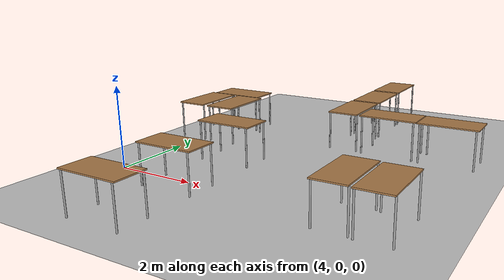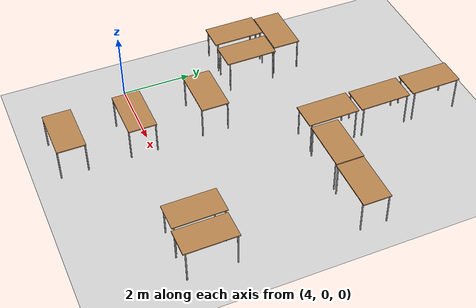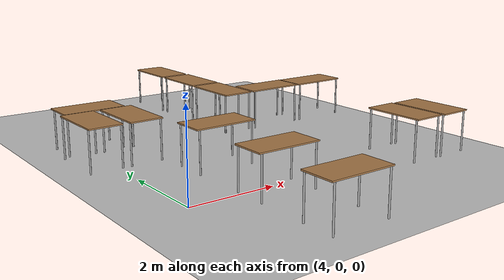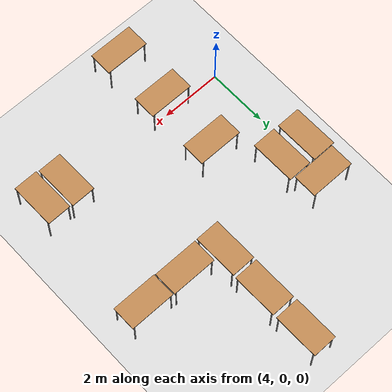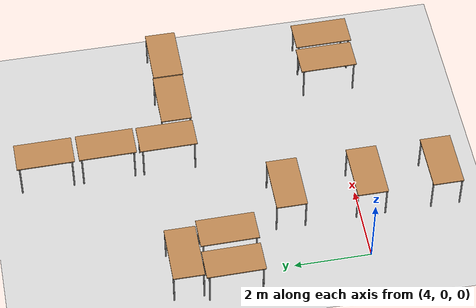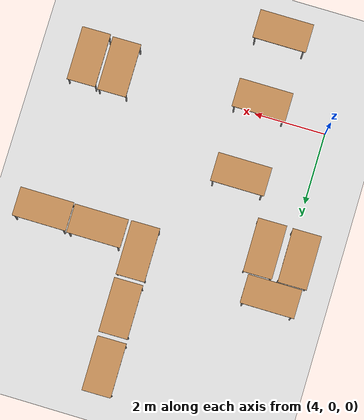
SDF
<sdf version="1.6">
 <world name="default">
  <model name="ground_plane">
   <static>1</static>
   <link name="link">
    <collision name="collision">
     <geometry><plane><normal>0 0 1</normal><size>100 100</size></plane></geometry>
     <surface><friction><ode><mu>100</mu><mu2>50</mu2></ode></friction></surface>
    </collision>
    <visual name="visual">
     <cast_shadows>0</cast_shadows>
     <geometry><plane><normal>0 0 1</normal><size>100 100</size></plane></geometry>
     <material>
      <script><uri>file://media/materials/scripts/gazebo.material</uri><name>Gazebo/Grey</name></script>
     </material>
    </visual>
   </link>
  </model>
  <model name="table">
   <static>1</static>
   <link name="link">
    <collision name="surface">
     <pose>0 0 1 0 -0 0</pose>
     <geometry><box><size>1.5 0.8 0.03</size></box></geometry>
     <surface><friction><ode><mu>0.6</mu><mu2>0.6</mu2></ode></friction></surface>
    </collision>
    <visual name="visual1">
     <pose>0 0 1 0 -0 0</pose>
     <geometry><box><size>1.5 0.8 0.03</size></box></geometry>
     <material>
      <script><uri>file://media/materials/scripts/gazebo.material</uri><name>Gazebo/Wood</name></script>
     </material>
    </visual>
    <collision name="front_left_leg">
     <pose>0.68 0.38 0.5 0 -0 0</pose>
     <geometry><cylinder><radius>0.02</radius><length>1</length></cylinder></geometry>
    </collision>
    <visual name="front_left_leg">
     <pose>0.68 0.38 0.5 0 -0 0</pose>
     <geometry><cylinder><radius>0.02</radius><length>1</length></cylinder></geometry>
     <material>
      <script><uri>file://media/materials/scripts/gazebo.material</uri><name>Gazebo/Grey</name></script>
     </material>
    </visual>
    <collision name="front_right_leg">
     <pose>0.68 -0.38 0.5 0 -0 0</pose>
     <geometry><cylinder><radius>0.02</radius><length>1</length></cylinder></geometry>
    </collision>
    <visual name="front_right_leg">
     <pose>0.68 -0.38 0.5 0 -0 0</pose>
     <geometry><cylinder><radius>0.02</radius><length>1</length></cylinder></geometry>
     <material>
      <script><uri>file://media/materials/scripts/gazebo.material</uri><name>Gazebo/Grey</name></script>
     </material>
    </visual>
    <collision name="back_right_leg">
     <pose>-0.68 -0.38 0.5 0 -0 0</pose>
     <geometry><cylinder><radius>0.02</radius><length>1</length></cylinder></geometry>
    </collision>
    <visual name="back_right_leg">
     <pose>-0.68 -0.38 0.5 0 -0 0</pose>
     <geometry><cylinder><radius>0.02</radius><length>1</length></cylinder></geometry>
     <material>
      <script><uri>file://media/materials/scripts/gazebo.material</uri><name>Gazebo/Grey</name></script>
     </material>
    </visual>
    <collision name="back_left_leg">
     <pose>-0.68 0.38 0.5 0 -0 0</pose>
     <geometry><cylinder><radius>0.02</radius><length>1</length></cylinder></geometry>
    </collision>
    <visual name="back_left_leg">
     <pose>-0.68 0.38 0.5 0 -0 0</pose>
     <geometry><cylinder><radius>0.02</radius><length>1</length></cylinder></geometry>
     <material>
      <script><uri>file://media/materials/scripts/gazebo.material</uri><name>Gazebo/Grey</name></script>
     </material>
    </visual>
   </link>
   <pose>9.1747 4.28247 0 0 -0 0</pose>
  </model>
  <model name="table_clone">
   <static>1</static>
   <link name="link">
    <collision name="surface">
     <pose>0 0 1 0 -0 0</pose>
     <geometry><box><size>1.5 0.8 0.03</size></box></geometry>
     <surface><friction><ode><mu>0.6</mu><mu2>0.6</mu2></ode></friction></surface>
    </collision>
    <visual name="visual1">
     <pose>0 0 1 0 -0 0</pose>
     <geometry><box><size>1.5 0.8 0.03</size></box></geometry>
     <material>
      <script><uri>file://media/materials/scripts/gazebo.material</uri><name>Gazebo/Wood</name></script>
     </material>
    </visual>
    <collision name="front_left_leg">
     <pose>0.68 0.38 0.5 0 -0 0</pose>
     <geometry><cylinder><radius>0.02</radius><length>1</length></cylinder></geometry>
    </collision>
    <visual name="front_left_leg">
     <pose>0.68 0.38 0.5 0 -0 0</pose>
     <geometry><cylinder><radius>0.02</radius><length>1</length></cylinder></geometry>
     <material>
      <script><uri>file://media/materials/scripts/gazebo.material</uri><name>Gazebo/Grey</name></script>
     </material>
    </visual>
    <collision name="front_right_leg">
     <pose>0.68 -0.38 0.5 0 -0 0</pose>
     <geometry><cylinder><radius>0.02</radius><length>1</length></cylinder></geometry>
    </collision>
    <visual name="front_right_leg">
     <pose>0.68 -0.38 0.5 0 -0 0</pose>
     <geometry><cylinder><radius>0.02</radius><length>1</length></cylinder></geometry>
     <material>
      <script><uri>file://media/materials/scripts/gazebo.material</uri><name>Gazebo/Grey</name></script>
     </material>
    </visual>
    <collision name="back_right_leg">
     <pose>-0.68 -0.38 0.5 0 -0 0</pose>
     <geometry><cylinder><radius>0.02</radius><length>1</length></cylinder></geometry>
    </collision>
    <visual name="back_right_leg">
     <pose>-0.68 -0.38 0.5 0 -0 0</pose>
     <geometry><cylinder><radius>0.02</radius><length>1</length></cylinder></geometry>
     <material>
      <script><uri>file://media/materials/scripts/gazebo.material</uri><name>Gazebo/Grey</name></script>
     </material>
    </visual>
    <collision name="back_left_leg">
     <pose>-0.68 0.38 0.5 0 -0 0</pose>
     <geometry><cylinder><radius>0.02</radius><length>1</length></cylinder></geometry>
    </collision>
    <visual name="back_left_leg">
     <pose>-0.68 0.38 0.5 0 -0 0</pose>
     <geometry><cylinder><radius>0.02</radius><length>1</length></cylinder></geometry>
     <material>
      <script><uri>file://media/materials/scripts/gazebo.material</uri><name>Gazebo/Grey</name></script>
     </material>
    </visual>
   </link>
   <pose>10.7045 4.25971 0 0 -0 0</pose>
  </model>
  <model name="table_clone_3">
   <static>1</static>
   <link name="link">
    <collision name="surface">
     <pose>0 0 1 0 -0 0</pose>
     <geometry><box><size>1.5 0.8 0.03</size></box></geometry>
     <surface><friction><ode><mu>0.6</mu><mu2>0.6</mu2></ode></friction></surface>
    </collision>
    <visual name="visual1">
     <pose>0 0 1 0 -0 0</pose>
     <geometry><box><size>1.5 0.8 0.03</size></box></geometry>
     <material>
      <script><uri>file://media/materials/scripts/gazebo.material</uri><name>Gazebo/Wood</name></script>
     </material>
    </visual>
    <collision name="front_left_leg">
     <pose>0.68 0.38 0.5 0 -0 0</pose>
     <geometry><cylinder><radius>0.02</radius><length>1</length></cylinder></geometry>
    </collision>
    <visual name="front_left_leg">
     <pose>0.68 0.38 0.5 0 -0 0</pose>
     <geometry><cylinder><radius>0.02</radius><length>1</length></cylinder></geometry>
     <material>
      <script><uri>file://media/materials/scripts/gazebo.material</uri><name>Gazebo/Grey</name></script>
     </material>
    </visual>
    <collision name="front_right_leg">
     <pose>0.68 -0.38 0.5 0 -0 0</pose>
     <geometry><cylinder><radius>0.02</radius><length>1</length></cylinder></geometry>
    </collision>
    <visual name="front_right_leg">
     <pose>0.68 -0.38 0.5 0 -0 0</pose>
     <geometry><cylinder><radius>0.02</radius><length>1</length></cylinder></geometry>
     <material>
      <script><uri>file://media/materials/scripts/gazebo.material</uri><name>Gazebo/Grey</name></script>
     </material>
    </visual>
    <collision name="back_right_leg">
     <pose>-0.68 -0.38 0.5 0 -0 0</pose>
     <geometry><cylinder><radius>0.02</radius><length>1</length></cylinder></geometry>
    </collision>
    <visual name="back_right_leg">
     <pose>-0.68 -0.38 0.5 0 -0 0</pose>
     <geometry><cylinder><radius>0.02</radius><length>1</length></cylinder></geometry>
     <material>
      <script><uri>file://media/materials/scripts/gazebo.material</uri><name>Gazebo/Grey</name></script>
     </material>
    </visual>
    <collision name="back_left_leg">
     <pose>-0.68 0.38 0.5 0 -0 0</pose>
     <geometry><cylinder><radius>0.02</radius><length>1</length></cylinder></geometry>
    </collision>
    <visual name="back_left_leg">
     <pose>-0.68 0.38 0.5 0 -0 0</pose>
     <geometry><cylinder><radius>0.02</radius><length>1</length></cylinder></geometry>
     <material>
      <script><uri>file://media/materials/scripts/gazebo.material</uri><name>Gazebo/Grey</name></script>
     </material>
    </visual>
   </link>
   <pose>7.94216 4.62597 0 0 0 -1.56261</pose>
  </model>
  <model name="table_clone_3_clone">
   <static>1</static>
   <link name="link">
    <collision name="surface">
     <pose>0 0 1 0 -0 0</pose>
     <geometry><box><size>1.5 0.8 0.03</size></box></geometry>
     <surface><friction><ode><mu>0.6</mu><mu2>0.6</mu2></ode></friction></surface>
    </collision>
    <visual name="visual1">
     <pose>0 0 1 0 -0 0</pose>
     <geometry><box><size>1.5 0.8 0.03</size></box></geometry>
     <material>
      <script><uri>file://media/materials/scripts/gazebo.material</uri><name>Gazebo/Wood</name></script>
     </material>
    </visual>
    <collision name="front_left_leg">
     <pose>0.68 0.38 0.5 0 -0 0</pose>
     <geometry><cylinder><radius>0.02</radius><length>1</length></cylinder></geometry>
    </collision>
    <visual name="front_left_leg">
     <pose>0.68 0.38 0.5 0 -0 0</pose>
     <geometry><cylinder><radius>0.02</radius><length>1</length></cylinder></geometry>
     <material>
      <script><uri>file://media/materials/scripts/gazebo.material</uri><name>Gazebo/Grey</name></script>
     </material>
    </visual>
    <collision name="front_right_leg">
     <pose>0.68 -0.38 0.5 0 -0 0</pose>
     <geometry><cylinder><radius>0.02</radius><length>1</length></cylinder></geometry>
    </collision>
    <visual name="front_right_leg">
     <pose>0.68 -0.38 0.5 0 -0 0</pose>
     <geometry><cylinder><radius>0.02</radius><length>1</length></cylinder></geometry>
     <material>
      <script><uri>file://media/materials/scripts/gazebo.material</uri><name>Gazebo/Grey</name></script>
     </material>
    </visual>
    <collision name="back_right_leg">
     <pose>-0.68 -0.38 0.5 0 -0 0</pose>
     <geometry><cylinder><radius>0.02</radius><length>1</length></cylinder></geometry>
    </collision>
    <visual name="back_right_leg">
     <pose>-0.68 -0.38 0.5 0 -0 0</pose>
     <geometry><cylinder><radius>0.02</radius><length>1</length></cylinder></geometry>
     <material>
      <script><uri>file://media/materials/scripts/gazebo.material</uri><name>Gazebo/Grey</name></script>
     </material>
    </visual>
    <collision name="back_left_leg">
     <pose>-0.68 0.38 0.5 0 -0 0</pose>
     <geometry><cylinder><radius>0.02</radius><length>1</length></cylinder></geometry>
    </collision>
    <visual name="back_left_leg">
     <pose>-0.68 0.38 0.5 0 -0 0</pose>
     <geometry><cylinder><radius>0.02</radius><length>1</length></cylinder></geometry>
     <material>
      <script><uri>file://media/materials/scripts/gazebo.material</uri><name>Gazebo/Grey</name></script>
     </material>
    </visual>
   </link>
   <pose>7.93938 6.21613 0 0 0 -1.56261</pose>
  </model>
  <model name="table_clone_3_clone_0">
   <static>1</static>
   <link name="link">
    <collision name="surface">
     <pose>0 0 1 0 -0 0</pose>
     <geometry><box><size>1.5 0.8 0.03</size></box></geometry>
     <surface><friction><ode><mu>0.6</mu><mu2>0.6</mu2></ode></friction></surface>
    </collision>
    <visual name="visual1">
     <pose>0 0 1 0 -0 0</pose>
     <geometry><box><size>1.5 0.8 0.03</size></box></geometry>
     <material>
      <script><uri>file://media/materials/scripts/gazebo.material</uri><name>Gazebo/Wood</name></script>
     </material>
    </visual>
    <collision name="front_left_leg">
     <pose>0.68 0.38 0.5 0 -0 0</pose>
     <geometry><cylinder><radius>0.02</radius><length>1</length></cylinder></geometry>
    </collision>
    <visual name="front_left_leg">
     <pose>0.68 0.38 0.5 0 -0 0</pose>
     <geometry><cylinder><radius>0.02</radius><length>1</length></cylinder></geometry>
     <material>
      <script><uri>file://media/materials/scripts/gazebo.material</uri><name>Gazebo/Grey</name></script>
     </material>
    </visual>
    <collision name="front_right_leg">
     <pose>0.68 -0.38 0.5 0 -0 0</pose>
     <geometry><cylinder><radius>0.02</radius><length>1</length></cylinder></geometry>
    </collision>
    <visual name="front_right_leg">
     <pose>0.68 -0.38 0.5 0 -0 0</pose>
     <geometry><cylinder><radius>0.02</radius><length>1</length></cylinder></geometry>
     <material>
      <script><uri>file://media/materials/scripts/gazebo.material</uri><name>Gazebo/Grey</name></script>
     </material>
    </visual>
    <collision name="back_right_leg">
     <pose>-0.68 -0.38 0.5 0 -0 0</pose>
     <geometry><cylinder><radius>0.02</radius><length>1</length></cylinder></geometry>
    </collision>
    <visual name="back_right_leg">
     <pose>-0.68 -0.38 0.5 0 -0 0</pose>
     <geometry><cylinder><radius>0.02</radius><length>1</length></cylinder></geometry>
     <material>
      <script><uri>file://media/materials/scripts/gazebo.material</uri><name>Gazebo/Grey</name></script>
     </material>
    </visual>
    <collision name="back_left_leg">
     <pose>-0.68 0.38 0.5 0 -0 0</pose>
     <geometry><cylinder><radius>0.02</radius><length>1</length></cylinder></geometry>
    </collision>
    <visual name="back_left_leg">
     <pose>-0.68 0.38 0.5 0 -0 0</pose>
     <geometry><cylinder><radius>0.02</radius><length>1</length></cylinder></geometry>
     <material>
      <script><uri>file://media/materials/scripts/gazebo.material</uri><name>Gazebo/Grey</name></script>
     </material>
    </visual>
   </link>
   <pose>7.91682 7.82934 0 0 0 -1.56261</pose>
  </model>
  <model name="table_clone_3_clone_8">
   <static>1</static>
   <link name="link">
    <collision name="surface">
     <pose>0 0 1 0 -0 0</pose>
     <geometry><box><size>1.5 0.8 0.03</size></box></geometry>
     <surface><friction><ode><mu>0.6</mu><mu2>0.6</mu2></ode></friction></surface>
    </collision>
    <visual name="visual1">
     <pose>0 0 1 0 -0 0</pose>
     <geometry><box><size>1.5 0.8 0.03</size></box></geometry>
     <material>
      <script><uri>file://media/materials/scripts/gazebo.material</uri><name>Gazebo/Wood</name></script>
     </material>
    </visual>
    <collision name="front_left_leg">
     <pose>0.68 0.38 0.5 0 -0 0</pose>
     <geometry><cylinder><radius>0.02</radius><length>1</length></cylinder></geometry>
    </collision>
    <visual name="front_left_leg">
     <pose>0.68 0.38 0.5 0 -0 0</pose>
     <geometry><cylinder><radius>0.02</radius><length>1</length></cylinder></geometry>
     <material>
      <script><uri>file://media/materials/scripts/gazebo.material</uri><name>Gazebo/Grey</name></script>
     </material>
    </visual>
    <collision name="front_right_leg">
     <pose>0.68 -0.38 0.5 0 -0 0</pose>
     <geometry><cylinder><radius>0.02</radius><length>1</length></cylinder></geometry>
    </collision>
    <visual name="front_right_leg">
     <pose>0.68 -0.38 0.5 0 -0 0</pose>
     <geometry><cylinder><radius>0.02</radius><length>1</length></cylinder></geometry>
     <material>
      <script><uri>file://media/materials/scripts/gazebo.material</uri><name>Gazebo/Grey</name></script>
     </material>
    </visual>
    <collision name="back_right_leg">
     <pose>-0.68 -0.38 0.5 0 -0 0</pose>
     <geometry><cylinder><radius>0.02</radius><length>1</length></cylinder></geometry>
    </collision>
    <visual name="back_right_leg">
     <pose>-0.68 -0.38 0.5 0 -0 0</pose>
     <geometry><cylinder><radius>0.02</radius><length>1</length></cylinder></geometry>
     <material>
      <script><uri>file://media/materials/scripts/gazebo.material</uri><name>Gazebo/Grey</name></script>
     </material>
    </visual>
    <collision name="back_left_leg">
     <pose>-0.68 0.38 0.5 0 -0 0</pose>
     <geometry><cylinder><radius>0.02</radius><length>1</length></cylinder></geometry>
    </collision>
    <visual name="back_left_leg">
     <pose>-0.68 0.38 0.5 0 -0 0</pose>
     <geometry><cylinder><radius>0.02</radius><length>1</length></cylinder></geometry>
     <material>
      <script><uri>file://media/materials/scripts/gazebo.material</uri><name>Gazebo/Grey</name></script>
     </material>
    </visual>
   </link>
   <pose>10.7347 -0.051072 0 0 0 -1.56261</pose>
  </model>
  <model name="table_clone_3_clone_9">
   <static>1</static>
   <link name="link">
    <collision name="surface">
     <pose>0 0 1 0 -0 0</pose>
     <geometry><box><size>1.5 0.8 0.03</size></box></geometry>
     <surface><friction><ode><mu>0.6</mu><mu2>0.6</mu2></ode></friction></surface>
    </collision>
    <visual name="visual1">
     <pose>0 0 1 0 -0 0</pose>
     <geometry><box><size>1.5 0.8 0.03</size></box></geometry>
     <material>
      <script><uri>file://media/materials/scripts/gazebo.material</uri><name>Gazebo/Wood</name></script>
     </material>
    </visual>
    <collision name="front_left_leg">
     <pose>0.68 0.38 0.5 0 -0 0</pose>
     <geometry><cylinder><radius>0.02</radius><length>1</length></cylinder></geometry>
    </collision>
    <visual name="front_left_leg">
     <pose>0.68 0.38 0.5 0 -0 0</pose>
     <geometry><cylinder><radius>0.02</radius><length>1</length></cylinder></geometry>
     <material>
      <script><uri>file://media/materials/scripts/gazebo.material</uri><name>Gazebo/Grey</name></script>
     </material>
    </visual>
    <collision name="front_right_leg">
     <pose>0.68 -0.38 0.5 0 -0 0</pose>
     <geometry><cylinder><radius>0.02</radius><length>1</length></cylinder></geometry>
    </collision>
    <visual name="front_right_leg">
     <pose>0.68 -0.38 0.5 0 -0 0</pose>
     <geometry><cylinder><radius>0.02</radius><length>1</length></cylinder></geometry>
     <material>
      <script><uri>file://media/materials/scripts/gazebo.material</uri><name>Gazebo/Grey</name></script>
     </material>
    </visual>
    <collision name="back_right_leg">
     <pose>-0.68 -0.38 0.5 0 -0 0</pose>
     <geometry><cylinder><radius>0.02</radius><length>1</length></cylinder></geometry>
    </collision>
    <visual name="back_right_leg">
     <pose>-0.68 -0.38 0.5 0 -0 0</pose>
     <geometry><cylinder><radius>0.02</radius><length>1</length></cylinder></geometry>
     <material>
      <script><uri>file://media/materials/scripts/gazebo.material</uri><name>Gazebo/Grey</name></script>
     </material>
    </visual>
    <collision name="back_left_leg">
     <pose>-0.68 0.38 0.5 0 -0 0</pose>
     <geometry><cylinder><radius>0.02</radius><length>1</length></cylinder></geometry>
    </collision>
    <visual name="back_left_leg">
     <pose>-0.68 0.38 0.5 0 -0 0</pose>
     <geometry><cylinder><radius>0.02</radius><length>1</length></cylinder></geometry>
     <material>
      <script><uri>file://media/materials/scripts/gazebo.material</uri><name>Gazebo/Grey</name></script>
     </material>
    </visual>
   </link>
   <pose>9.86319 -0.016888 0 0 0 -1.56261</pose>
  </model>
  <model name="table_clone_4">
   <static>1</static>
   <link name="link">
    <collision name="surface">
     <pose>0 0 1 0 -0 0</pose>
     <geometry><box><size>1.5 0.8 0.03</size></box></geometry>
     <surface><friction><ode><mu>0.6</mu><mu2>0.6</mu2></ode></friction></surface>
    </collision>
    <visual name="visual1">
     <pose>0 0 1 0 -0 0</pose>
     <geometry><box><size>1.5 0.8 0.03</size></box></geometry>
     <material>
      <script><uri>file://media/materials/scripts/gazebo.material</uri><name>Gazebo/Wood</name></script>
     </material>
    </visual>
    <collision name="front_left_leg">
     <pose>0.68 0.38 0.5 0 -0 0</pose>
     <geometry><cylinder><radius>0.02</radius><length>1</length></cylinder></geometry>
    </collision>
    <visual name="front_left_leg">
     <pose>0.68 0.38 0.5 0 -0 0</pose>
     <geometry><cylinder><radius>0.02</radius><length>1</length></cylinder></geometry>
     <material>
      <script><uri>file://media/materials/scripts/gazebo.material</uri><name>Gazebo/Grey</name></script>
     </material>
    </visual>
    <collision name="front_right_leg">
     <pose>0.68 -0.38 0.5 0 -0 0</pose>
     <geometry><cylinder><radius>0.02</radius><length>1</length></cylinder></geometry>
    </collision>
    <visual name="front_right_leg">
     <pose>0.68 -0.38 0.5 0 -0 0</pose>
     <geometry><cylinder><radius>0.02</radius><length>1</length></cylinder></geometry>
     <material>
      <script><uri>file://media/materials/scripts/gazebo.material</uri><name>Gazebo/Grey</name></script>
     </material>
    </visual>
    <collision name="back_right_leg">
     <pose>-0.68 -0.38 0.5 0 -0 0</pose>
     <geometry><cylinder><radius>0.02</radius><length>1</length></cylinder></geometry>
    </collision>
    <visual name="back_right_leg">
     <pose>-0.68 -0.38 0.5 0 -0 0</pose>
     <geometry><cylinder><radius>0.02</radius><length>1</length></cylinder></geometry>
     <material>
      <script><uri>file://media/materials/scripts/gazebo.material</uri><name>Gazebo/Grey</name></script>
     </material>
    </visual>
    <collision name="back_left_leg">
     <pose>-0.68 0.38 0.5 0 -0 0</pose>
     <geometry><cylinder><radius>0.02</radius><length>1</length></cylinder></geometry>
    </collision>
    <visual name="back_left_leg">
     <pose>-0.68 0.38 0.5 0 -0 0</pose>
     <geometry><cylinder><radius>0.02</radius><length>1</length></cylinder></geometry>
     <material>
      <script><uri>file://media/materials/scripts/gazebo.material</uri><name>Gazebo/Grey</name></script>
     </material>
    </visual>
   </link>
   <pose>5.89886 -2.22809 0 0 -0 0</pose>
  </model>
  <model name="table_clone_5">
   <static>1</static>
   <link name="link">
    <collision name="surface">
     <pose>0 0 1 0 -0 0</pose>
     <geometry><box><size>1.5 0.8 0.03</size></box></geometry>
     <surface><friction><ode><mu>0.6</mu><mu2>0.6</mu2></ode></friction></surface>
    </collision>
    <visual name="visual1">
     <pose>0 0 1 0 -0 0</pose>
     <geometry><box><size>1.5 0.8 0.03</size></box></geometry>
     <material>
      <script><uri>file://media/materials/scripts/gazebo.material</uri><name>Gazebo/Wood</name></script>
     </material>
    </visual>
    <collision name="front_left_leg">
     <pose>0.68 0.38 0.5 0 -0 0</pose>
     <geometry><cylinder><radius>0.02</radius><length>1</length></cylinder></geometry>
    </collision>
    <visual name="front_left_leg">
     <pose>0.68 0.38 0.5 0 -0 0</pose>
     <geometry><cylinder><radius>0.02</radius><length>1</length></cylinder></geometry>
     <material>
      <script><uri>file://media/materials/scripts/gazebo.material</uri><name>Gazebo/Grey</name></script>
     </material>
    </visual>
    <collision name="front_right_leg">
     <pose>0.68 -0.38 0.5 0 -0 0</pose>
     <geometry><cylinder><radius>0.02</radius><length>1</length></cylinder></geometry>
    </collision>
    <visual name="front_right_leg">
     <pose>0.68 -0.38 0.5 0 -0 0</pose>
     <geometry><cylinder><radius>0.02</radius><length>1</length></cylinder></geometry>
     <material>
      <script><uri>file://media/materials/scripts/gazebo.material</uri><name>Gazebo/Grey</name></script>
     </material>
    </visual>
    <collision name="back_right_leg">
     <pose>-0.68 -0.38 0.5 0 -0 0</pose>
     <geometry><cylinder><radius>0.02</radius><length>1</length></cylinder></geometry>
    </collision>
    <visual name="back_right_leg">
     <pose>-0.68 -0.38 0.5 0 -0 0</pose>
     <geometry><cylinder><radius>0.02</radius><length>1</length></cylinder></geometry>
     <material>
      <script><uri>file://media/materials/scripts/gazebo.material</uri><name>Gazebo/Grey</name></script>
     </material>
    </visual>
    <collision name="back_left_leg">
     <pose>-0.68 0.38 0.5 0 -0 0</pose>
     <geometry><cylinder><radius>0.02</radius><length>1</length></cylinder></geometry>
    </collision>
    <visual name="back_left_leg">
     <pose>-0.68 0.38 0.5 0 -0 0</pose>
     <geometry><cylinder><radius>0.02</radius><length>1</length></cylinder></geometry>
     <material>
      <script><uri>file://media/materials/scripts/gazebo.material</uri><name>Gazebo/Grey</name></script>
     </material>
    </visual>
   </link>
   <pose>5.90615 -0.258997 0 0 -0 0</pose>
  </model>
  <model name="table_clone_6">
   <static>1</static>
   <link name="link">
    <collision name="surface">
     <pose>0 0 1 0 -0 0</pose>
     <geometry><box><size>1.5 0.8 0.03</size></box></geometry>
     <surface><friction><ode><mu>0.6</mu><mu2>0.6</mu2></ode></friction></surface>
    </collision>
    <visual name="visual1">
     <pose>0 0 1 0 -0 0</pose>
     <geometry><box><size>1.5 0.8 0.03</size></box></geometry>
     <material>
      <script><uri>file://media/materials/scripts/gazebo.material</uri><name>Gazebo/Wood</name></script>
     </material>
    </visual>
    <collision name="front_left_leg">
     <pose>0.68 0.38 0.5 0 -0 0</pose>
     <geometry><cylinder><radius>0.02</radius><length>1</length></cylinder></geometry>
    </collision>
    <visual name="front_left_leg">
     <pose>0.68 0.38 0.5 0 -0 0</pose>
     <geometry><cylinder><radius>0.02</radius><length>1</length></cylinder></geometry>
     <material>
      <script><uri>file://media/materials/scripts/gazebo.material</uri><name>Gazebo/Grey</name></script>
     </material>
    </visual>
    <collision name="front_right_leg">
     <pose>0.68 -0.38 0.5 0 -0 0</pose>
     <geometry><cylinder><radius>0.02</radius><length>1</length></cylinder></geometry>
    </collision>
    <visual name="front_right_leg">
     <pose>0.68 -0.38 0.5 0 -0 0</pose>
     <geometry><cylinder><radius>0.02</radius><length>1</length></cylinder></geometry>
     <material>
      <script><uri>file://media/materials/scripts/gazebo.material</uri><name>Gazebo/Grey</name></script>
     </material>
    </visual>
    <collision name="back_right_leg">
     <pose>-0.68 -0.38 0.5 0 -0 0</pose>
     <geometry><cylinder><radius>0.02</radius><length>1</length></cylinder></geometry>
    </collision>
    <visual name="back_right_leg">
     <pose>-0.68 -0.38 0.5 0 -0 0</pose>
     <geometry><cylinder><radius>0.02</radius><length>1</length></cylinder></geometry>
     <material>
      <script><uri>file://media/materials/scripts/gazebo.material</uri><name>Gazebo/Grey</name></script>
     </material>
    </visual>
    <collision name="back_left_leg">
     <pose>-0.68 0.38 0.5 0 -0 0</pose>
     <geometry><cylinder><radius>0.02</radius><length>1</length></cylinder></geometry>
    </collision>
    <visual name="back_left_leg">
     <pose>-0.68 0.38 0.5 0 -0 0</pose>
     <geometry><cylinder><radius>0.02</radius><length>1</length></cylinder></geometry>
     <material>
      <script><uri>file://media/materials/scripts/gazebo.material</uri><name>Gazebo/Grey</name></script>
     </material>
    </visual>
   </link>
   <pose>5.88642 1.84646 0 0 -0 0</pose>
  </model>
  <model name="table_clone_3_clone_8_clone">
   <static>1</static>
   <link name="link">
    <collision name="surface">
     <pose>0 0 1 0 -0 0</pose>
     <geometry><box><size>1.5 0.8 0.03</size></box></geometry>
     <surface><friction><ode><mu>0.6</mu><mu2>0.6</mu2></ode></friction></surface>
    </collision>
    <visual name="visual1">
     <pose>0 0 1 0 -0 0</pose>
     <geometry><box><size>1.5 0.8 0.03</size></box></geometry>
     <material>
      <script><uri>file://media/materials/scripts/gazebo.material</uri><name>Gazebo/Wood</name></script>
     </material>
    </visual>
    <collision name="front_left_leg">
     <pose>0.68 0.38 0.5 0 -0 0</pose>
     <geometry><cylinder><radius>0.02</radius><length>1</length></cylinder></geometry>
    </collision>
    <visual name="front_left_leg">
     <pose>0.68 0.38 0.5 0 -0 0</pose>
     <geometry><cylinder><radius>0.02</radius><length>1</length></cylinder></geometry>
     <material>
      <script><uri>file://media/materials/scripts/gazebo.material</uri><name>Gazebo/Grey</name></script>
     </material>
    </visual>
    <collision name="front_right_leg">
     <pose>0.68 -0.38 0.5 0 -0 0</pose>
     <geometry><cylinder><radius>0.02</radius><length>1</length></cylinder></geometry>
    </collision>
    <visual name="front_right_leg">
     <pose>0.68 -0.38 0.5 0 -0 0</pose>
     <geometry><cylinder><radius>0.02</radius><length>1</length></cylinder></geometry>
     <material>
      <script><uri>file://media/materials/scripts/gazebo.material</uri><name>Gazebo/Grey</name></script>
     </material>
    </visual>
    <collision name="back_right_leg">
     <pose>-0.68 -0.38 0.5 0 -0 0</pose>
     <geometry><cylinder><radius>0.02</radius><length>1</length></cylinder></geometry>
    </collision>
    <visual name="back_right_leg">
     <pose>-0.68 -0.38 0.5 0 -0 0</pose>
     <geometry><cylinder><radius>0.02</radius><length>1</length></cylinder></geometry>
     <material>
      <script><uri>file://media/materials/scripts/gazebo.material</uri><name>Gazebo/Grey</name></script>
     </material>
    </visual>
    <collision name="back_left_leg">
     <pose>-0.68 0.38 0.5 0 -0 0</pose>
     <geometry><cylinder><radius>0.02</radius><length>1</length></cylinder></geometry>
    </collision>
    <visual name="back_left_leg">
     <pose>-0.68 0.38 0.5 0 -0 0</pose>
     <geometry><cylinder><radius>0.02</radius><length>1</length></cylinder></geometry>
     <material>
      <script><uri>file://media/materials/scripts/gazebo.material</uri><name>Gazebo/Grey</name></script>
     </material>
    </visual>
   </link>
   <pose>4.7121 3.5876 0 0 0 -1.56261</pose>
  </model>
  <model name="table_clone_3_clone_8_clone_0">
   <static>1</static>
   <link name="link">
    <collision name="surface">
     <pose>0 0 1 0 -0 0</pose>
     <geometry><box><size>1.5 0.8 0.03</size></box></geometry>
     <surface><friction><ode><mu>0.6</mu><mu2>0.6</mu2></ode></friction></surface>
    </collision>
    <visual name="visual1">
     <pose>0 0 1 0 -0 0</pose>
     <geometry><box><size>1.5 0.8 0.03</size></box></geometry>
     <material>
      <script><uri>file://media/materials/scripts/gazebo.material</uri><name>Gazebo/Wood</name></script>
     </material>
    </visual>
    <collision name="front_left_leg">
     <pose>0.68 0.38 0.5 0 -0 0</pose>
     <geometry><cylinder><radius>0.02</radius><length>1</length></cylinder></geometry>
    </collision>
    <visual name="front_left_leg">
     <pose>0.68 0.38 0.5 0 -0 0</pose>
     <geometry><cylinder><radius>0.02</radius><length>1</length></cylinder></geometry>
     <material>
      <script><uri>file://media/materials/scripts/gazebo.material</uri><name>Gazebo/Grey</name></script>
     </material>
    </visual>
    <collision name="front_right_leg">
     <pose>0.68 -0.38 0.5 0 -0 0</pose>
     <geometry><cylinder><radius>0.02</radius><length>1</length></cylinder></geometry>
    </collision>
    <visual name="front_right_leg">
     <pose>0.68 -0.38 0.5 0 -0 0</pose>
     <geometry><cylinder><radius>0.02</radius><length>1</length></cylinder></geometry>
     <material>
      <script><uri>file://media/materials/scripts/gazebo.material</uri><name>Gazebo/Grey</name></script>
     </material>
    </visual>
    <collision name="back_right_leg">
     <pose>-0.68 -0.38 0.5 0 -0 0</pose>
     <geometry><cylinder><radius>0.02</radius><length>1</length></cylinder></geometry>
    </collision>
    <visual name="back_right_leg">
     <pose>-0.68 -0.38 0.5 0 -0 0</pose>
     <geometry><cylinder><radius>0.02</radius><length>1</length></cylinder></geometry>
     <material>
      <script><uri>file://media/materials/scripts/gazebo.material</uri><name>Gazebo/Grey</name></script>
     </material>
    </visual>
    <collision name="back_left_leg">
     <pose>-0.68 0.38 0.5 0 -0 0</pose>
     <geometry><cylinder><radius>0.02</radius><length>1</length></cylinder></geometry>
    </collision>
    <visual name="back_left_leg">
     <pose>-0.68 0.38 0.5 0 -0 0</pose>
     <geometry><cylinder><radius>0.02</radius><length>1</length></cylinder></geometry>
     <material>
      <script><uri>file://media/materials/scripts/gazebo.material</uri><name>Gazebo/Grey</name></script>
     </material>
    </visual>
   </link>
   <pose>3.7455 3.59658 0 0 0 -1.56261</pose>
  </model>
  <model name="table_clone_7">
   <static>1</static>
   <link name="link">
    <collision name="surface">
     <pose>0 0 1 0 -0 0</pose>
     <geometry><box><size>1.5 0.8 0.03</size></box></geometry>
     <surface><friction><ode><mu>0.6</mu><mu2>0.6</mu2></ode></friction></surface>
    </collision>
    <visual name="visual1">
     <pose>0 0 1 0 -0 0</pose>
     <geometry><box><size>1.5 0.8 0.03</size></box></geometry>
     <material>
      <script><uri>file://media/materials/scripts/gazebo.material</uri><name>Gazebo/Wood</name></script>
     </material>
    </visual>
    <collision name="front_left_leg">
     <pose>0.68 0.38 0.5 0 -0 0</pose>
     <geometry><cylinder><radius>0.02</radius><length>1</length></cylinder></geometry>
    </collision>
    <visual name="front_left_leg">
     <pose>0.68 0.38 0.5 0 -0 0</pose>
     <geometry><cylinder><radius>0.02</radius><length>1</length></cylinder></geometry>
     <material>
      <script><uri>file://media/materials/scripts/gazebo.material</uri><name>Gazebo/Grey</name></script>
     </material>
    </visual>
    <collision name="front_right_leg">
     <pose>0.68 -0.38 0.5 0 -0 0</pose>
     <geometry><cylinder><radius>0.02</radius><length>1</length></cylinder></geometry>
    </collision>
    <visual name="front_right_leg">
     <pose>0.68 -0.38 0.5 0 -0 0</pose>
     <geometry><cylinder><radius>0.02</radius><length>1</length></cylinder></geometry>
     <material>
      <script><uri>file://media/materials/scripts/gazebo.material</uri><name>Gazebo/Grey</name></script>
     </material>
    </visual>
    <collision name="back_right_leg">
     <pose>-0.68 -0.38 0.5 0 -0 0</pose>
     <geometry><cylinder><radius>0.02</radius><length>1</length></cylinder></geometry>
    </collision>
    <visual name="back_right_leg">
     <pose>-0.68 -0.38 0.5 0 -0 0</pose>
     <geometry><cylinder><radius>0.02</radius><length>1</length></cylinder></geometry>
     <material>
      <script><uri>file://media/materials/scripts/gazebo.material</uri><name>Gazebo/Grey</name></script>
     </material>
    </visual>
    <collision name="back_left_leg">
     <pose>-0.68 0.38 0.5 0 -0 0</pose>
     <geometry><cylinder><radius>0.02</radius><length>1</length></cylinder></geometry>
    </collision>
    <visual name="back_left_leg">
     <pose>-0.68 0.38 0.5 0 -0 0</pose>
     <geometry><cylinder><radius>0.02</radius><length>1</length></cylinder></geometry>
     <material>
      <script><uri>file://media/materials/scripts/gazebo.material</uri><name>Gazebo/Grey</name></script>
     </material>
    </visual>
   </link>
   <pose>4.19879 4.76877 0 0 -0 0</pose>
  </model>
 </world>
</sdf>
